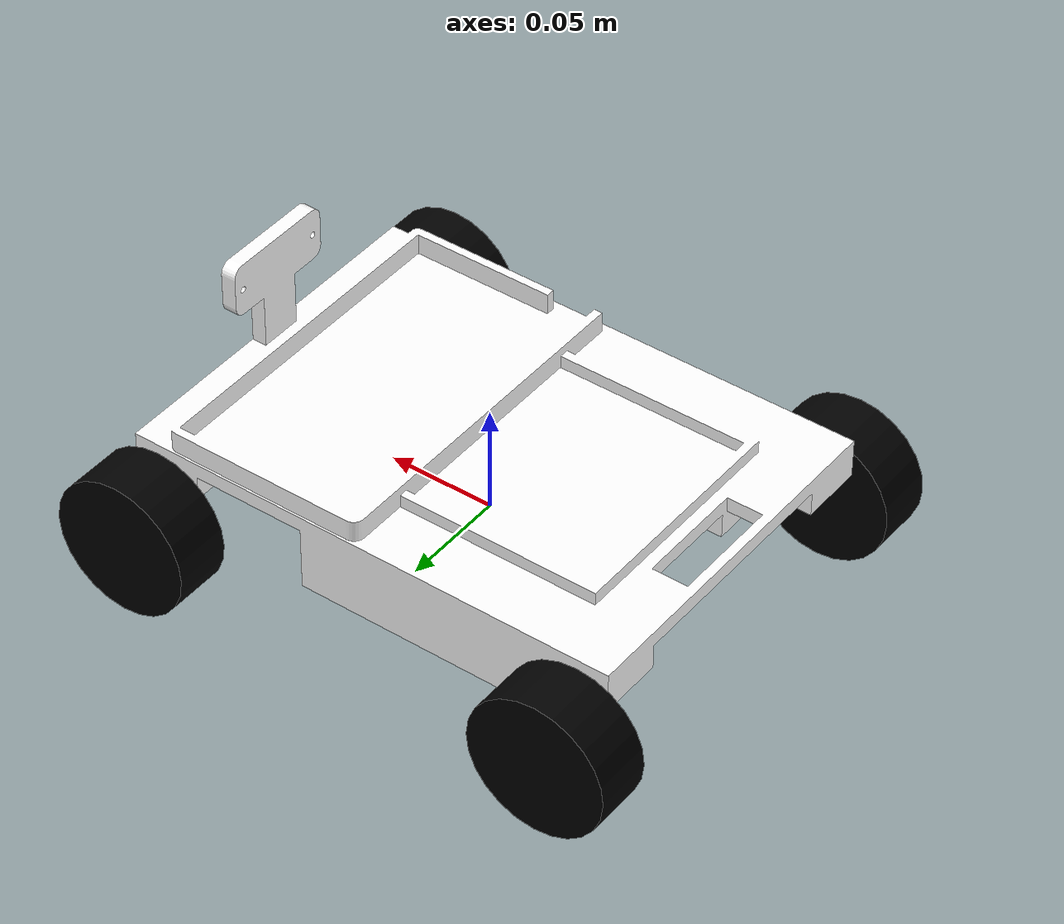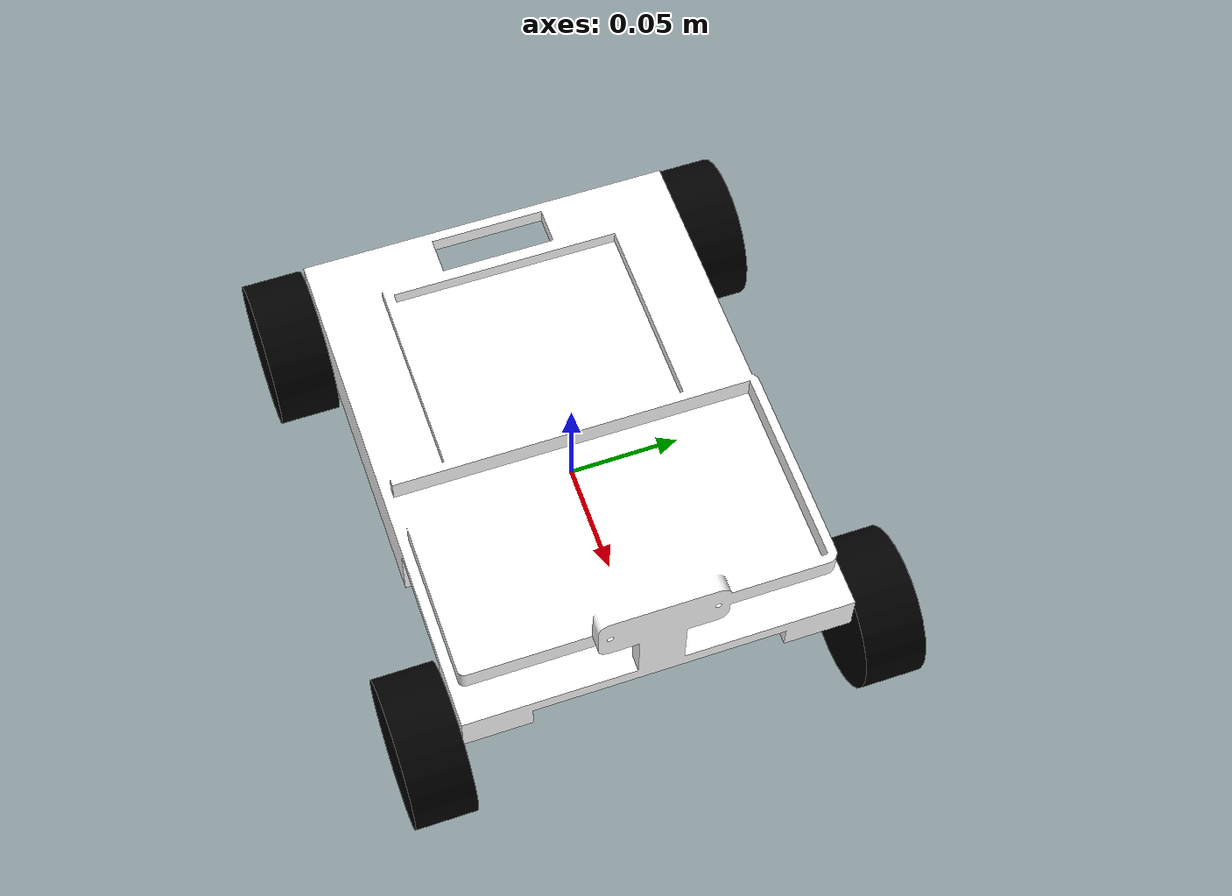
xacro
<?xml version="1.0"?>
<robot xmlns:xacro="http://www.ros.org/wiki/xacro">

    <xacro:include filename="inertial_macros.xacro"/>
    <xacro:property name="meshes_dir" value="/home/aidan/ana_bot/src/ana/meshes" />

    <material name="white">
        <color rgba="1 1 1 1" />
    </material>

    <material name="orange">
        <color rgba="1 0.3 0.1 1" />
    </material>

    <material name="blue">
        <color rgba="0.2 0.2 1 1" />
    </material>

    <material name="black">
        <color rgba="0 0 0 1" />
    </material>

    <!-- CHASSIS LINK -->

    <link name="base_link">
        <origin xyz="0 0 0"/>
    </link>

    <joint name="base_footprint_joint" type="fixed">
        <parent link="base_link"/>
        <child link="base_footprint"/>
        <origin xyz="0 0 0" rpy="0 0 0"/>
    </joint>

    <!-- sits on top of base link, used for 3d navigation (for 2d, only base_link is used) -->
    <link name="base_footprint">
    </link>

    <joint name="chassis_joint" type="fixed">
        <parent link="base_link"/>
        <child link="chassis"/>
        <origin xyz="-0.001 0 0"/>
    </joint>

    <link name="chassis">
        <visual>
            <origin xyz="0.1175 0.0835 0.0295"/> <!-- chassis location ajusted to be in the middle of the chassis -->
            <geometry>
                <mesh filename="file:///home/aidan/ana_bot/src/ana/meshes/ana_chassis.stl" scale="0.001 0.001 0.001"/>
            </geometry>
            <material name="white"/>
        </visual>
        <collision>
            <origin xyz="0.1175 0.0835 0.0295"/> <!-- chassis location ajusted to be in the middle of the chassis -->
            <geometry>
                <mesh filename="file:///home/aidan/ana_bot/src/ana/meshes/ana_chassis.stl" scale="0.001 0.001 0.001"/>
            </geometry>
        </collision>
        <xacro:inertial_box mass="0.5" x="0.235" y="0.17" z="0.0"> <!-- kiligrams -->
            <origin xyz="0.1175 0.0835 0.0295" rpy="0 0 0"/>
        </xacro:inertial_box>
    </link>

    <!-- FRONT LEFT WHEEL LINK -->

    <joint name="front_left_wheel_joint" type="continuous">
        <parent link="base_link"/>
        <child link="front_left_wheel"/>
        <origin xyz="0.104 0.0975 0" rpy="-1.5708 0 0"/>
        <axis xyz="0 0 1"/>
    </joint>

    <link name="front_left_wheel">
        <visual>
            <geometry>
                <cylinder radius="0.0325" length="0.027" />
            </geometry>
            <material name="black"/>
        </visual>
        <collision>
            <geometry>
                <sphere radius="0.0325"/>
            </geometry>
        </collision>
        <xacro:inertial_cylinder mass="0.1" length="0.027" radius = "0.0325">
            <origin xyz="0 0 0" rpy="0 0 0"/>
        </xacro:inertial_cylinder>
    </link>

    <!-- FRONT RIGHT WHEEL LINK -->

    <joint name="front_right_wheel_joint" type="continuous">
        <parent link="base_link"/>
        <child link="front_right_wheel"/>
        <origin xyz="0.104 -0.1005 0" rpy="1.5708 0 0"/>
        <axis xyz="0 0 -1"/>
    </joint>

    <link name="front_right_wheel">
        <visual>
            <geometry>
                <cylinder radius="0.0325" length="0.027" />
            </geometry>
            <material name="black"/>
        </visual>
        <collision>
            <geometry>
                <sphere radius="0.0325"/>
            </geometry>
        </collision>
        <xacro:inertial_cylinder mass="0.1" length="0.027" radius = "0.0325">
            <origin xyz="0 0 0" rpy="0 0 0"/>
        </xacro:inertial_cylinder>
    </link>

    <!-- BACK LEFT WHEEL LINK -->

    <joint name="back_left_wheel_joint" type="continuous">
        <parent link="base_link"/>
        <child link="back_left_wheel"/>
        <origin xyz="-0.104 0.0975 0" rpy="-1.5708 0 0"/>
        <axis xyz="0 0 1"/>
    </joint>

    <link name="back_left_wheel">
        <visual>
            <geometry>
                <cylinder radius="0.0325" length="0.027" />
            </geometry>
            <material name="black"/>
        </visual>
        <collision>
            <geometry>
                <sphere radius="0.0325"/>
            </geometry>
        </collision>
        <xacro:inertial_cylinder mass="0.1" length="0.027" radius = "0.0325">
            <origin xyz="0 0 0" rpy="0 0 0"/>
        </xacro:inertial_cylinder>
    </link>

    <!-- BACK RIGHT WHEEL LINK -->

    <joint name="back_right_wheel_joint" type="continuous">
        <parent link="base_link"/>
        <child link="back_right_wheel"/>
        <origin xyz="-0.104 -0.1005 0" rpy="1.5708 0 0"/>
        <axis xyz="0 0 -1"/>
    </joint>

    <link name="back_right_wheel">
        <visual>
            <geometry>
                <cylinder radius="0.0325" length="0.027" />
            </geometry>
            <material name="black"/>
        </visual>
        <collision>
            <geometry>
                <sphere radius="0.0325"/>
            </geometry>
        </collision>
        <xacro:inertial_cylinder mass="0.1" length="0.027" radius = "0.0325">
            <origin xyz="0 0 0" rpy="0 0 0"/>
        </xacro:inertial_cylinder>
    </link>

</robot>
